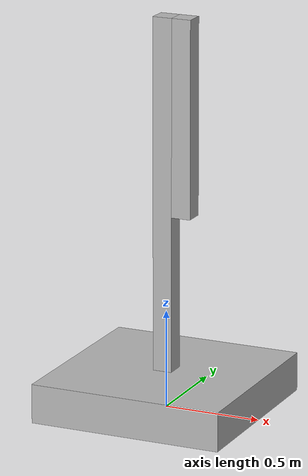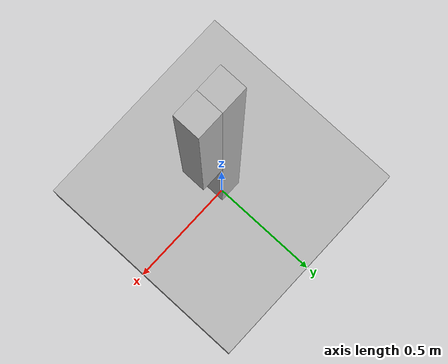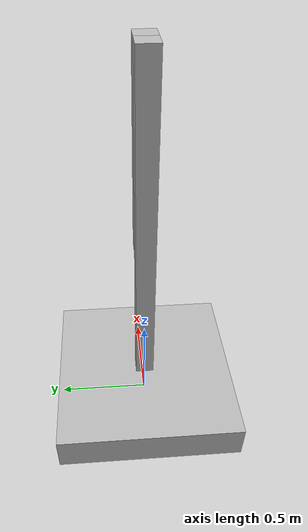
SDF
<?xml version="1.0" ?>
<sdf version="1.5">
  <world name="default">
    <!-- A global light source -->
    <include>
      <uri>model://sun</uri>
    </include>

    <!-- Remove shadows -->
    <scene>
      <ambient>0.0 0.0 0.0 0.1</ambient>
      <shadows>0</shadows>
    </scene>

    <!-- A ground plane -->

    <model name="gplane">
      <pose>0.000000 0.000000 0.000000 0.000000 -0.000000 0.000000</pose>
      <link name="plane">
        <pose>0.000000 0.000000 0.000000 0.000000 -0.000000 0.000000</pose>
        <collision name="plane">
          <pose>0.000000 0.000000 0.000000 0.000000 -0.000000 0.000000</pose>
          <geometry>
            <plane>
              <normal>0.000000 0.000000 1.000000</normal>
            </plane>
          </geometry>
          <surface>
            <friction>
              <ode>
                <mu>50.000000</mu>
                <mu2>50.000000</mu2>
                <fdir1>0.000000 0.000000 0.000000</fdir1>
                <slip1>0.000000</slip1>
                <slip2>0.000000</slip2>
              </ode>
            </friction>
            <bounce>
              <restitution_coefficient>0.000000</restitution_coefficient>
              <threshold>100000.000000</threshold>
            </bounce>
            <contact>
              <ode>
                <soft_cfm>0.000000</soft_cfm>
                <soft_erp>0.200000</soft_erp>
                <kp>1000000000.000000</kp>
                <kd>1.000000</kd>
                <max_vel>100.000000</max_vel>
                <min_depth>0.001000</min_depth>
              </ode>
            </contact>
          </surface>
          <laser_retro>0.000000</laser_retro>
        </collision>
        <gravity>1</gravity>
        <self_collide>0</self_collide>
        <kinematic>0</kinematic>
      </link>
      <static>1</static>
    </model>

    <!-- A testing model that includes the Velodyne sensor model -->
    <model name="my_robot">
      <include>
        <uri>model://pendulum_description</uri>
      </include>

      <!-- Attach the plugin to this model -->
      <plugin name="pendulum_control" filename="libpendulum_plugin.so"/>

    </model>

  </world>
</sdf>

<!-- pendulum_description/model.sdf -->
<sdf version='1.7'>
    <model name="pendulum">
        <pose>0 0 0 0 0 0</pose>
        <static>false</static>

        <link name="base">
            <pose>0 0 0 0 0 0</pose>

            <!--We use some large inertial values to prevent the base from moving-->
            <inertial>
                <pose>0 0 0 0 0 0</pose>
                <mass>10000</mass>
                <inertia>
                <ixx>10000</ixx>
                <ixy>0</ixy>
                <ixz>0</ixz>
                <iyy>10000</iyy>
                <iyz>0.0</iyz>
                <izz>10000</izz>
                </inertia>
            </inertial>

            <visual name="ground_visual">
                <pose>0 0 0.1 0 0 0</pose>
                <geometry>
                    <box>
                        <size>1.0 1.0 0.2</size>
                    </box>
                </geometry>
            </visual>
            <collision name="ground_collision">
                <pose>0 0 0.1 0 0 0</pose>
                <geometry>
                    <box>
                        <size>1.0 1.0 0.2</size>
                    </box>
                </geometry>
            </collision>
            <visual name="base_visual">
                <pose>0 0 1.0 0 0 0</pose>
                <geometry>
                    <box>
                        <size>0.1 0.1 2.0</size>
                    </box>
                </geometry>
            </visual>
            <collision name="base_collision">
                <pose>0 0 1.0 0 0 0</pose>
                <geometry>
                    <box>
                        <size>0.1 0.1 2.0</size>
                    </box>
                </geometry>
            </collision>
        </link>

        <link name="arm">
            <pose>0.10 0 2 0 0 0</pose>
            <inertial>
                <pose>0 0 -1 0 0 0</pose>
                <mass>1</mass>
                <inertia>
                <ixx>0.001</ixx>
                <ixy>0</ixy>
                <ixz>0</ixz>
                <iyy>0.001</iyy>
                <iyz>0.0</iyz>
                <izz>0.001</izz>
                </inertia>
            </inertial>

            <visual name="arm_visual">
                <pose>0 0 -0.5 0 0 0</pose>
                <geometry>
                    <box>
                        <size>0.1 0.1 1.0</size>
                    </box>
                </geometry>
            </visual>
            <collision name="arm_collision">
                <pose>0 0 -0.5 0 0 0</pose>
                <geometry>
                    <box>
                        <size>0.1 0.1 1.0</size>
                    </box>
                </geometry>
            </collision>
        </link>

        <joint name="base_to_arm_joint" type="revolute">
            <pose>0 0 0 0 0 0</pose>

            <child>arm</child>
            <parent>base</parent>
            <axis>
                <xyz>1 0 0</xyz>
                <limit>
                    <lower>-3.14</lower>
                    <upper>3.14</upper>
                    <effort>10</effort>
                    <velocity>1000</velocity>
                </limit>
            </axis>
        </joint>
    </model>
</sdf>
